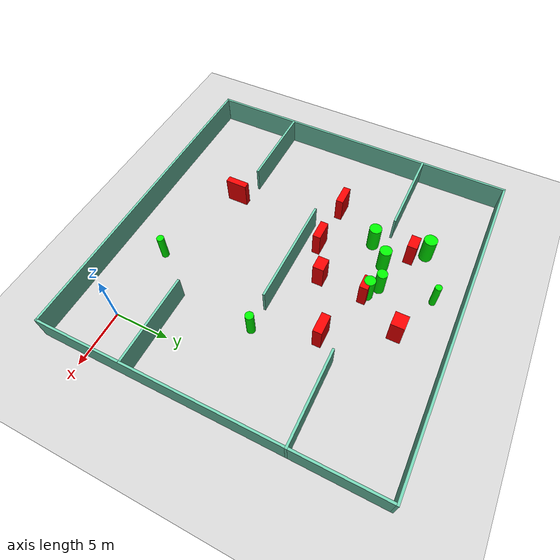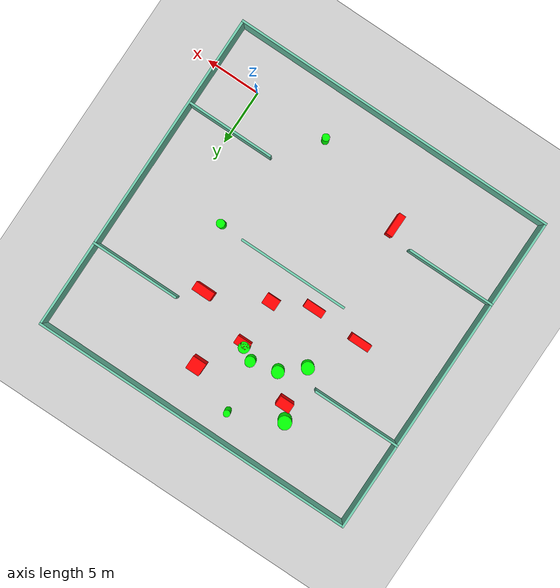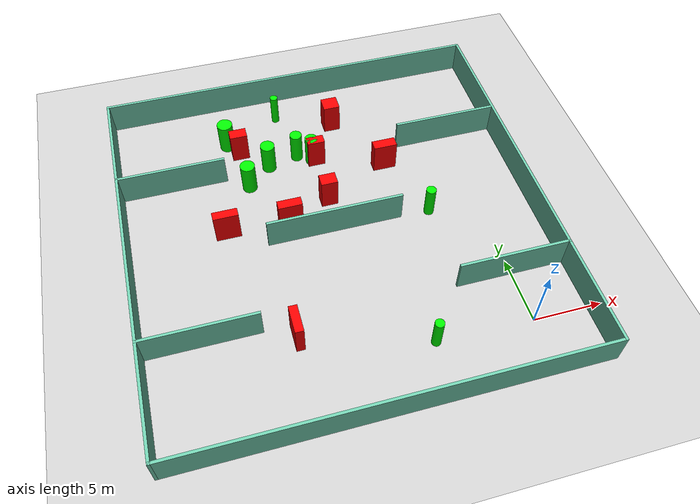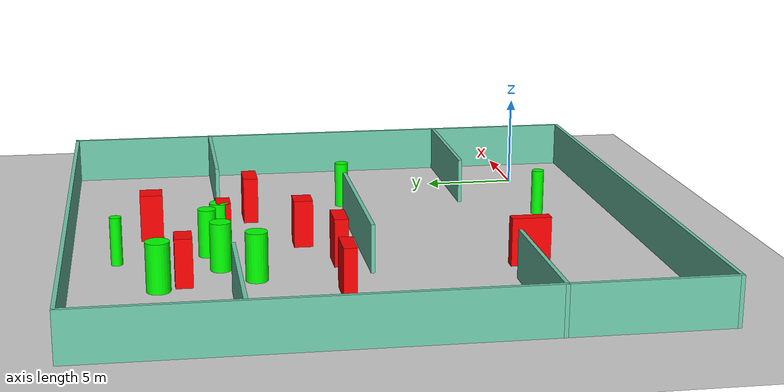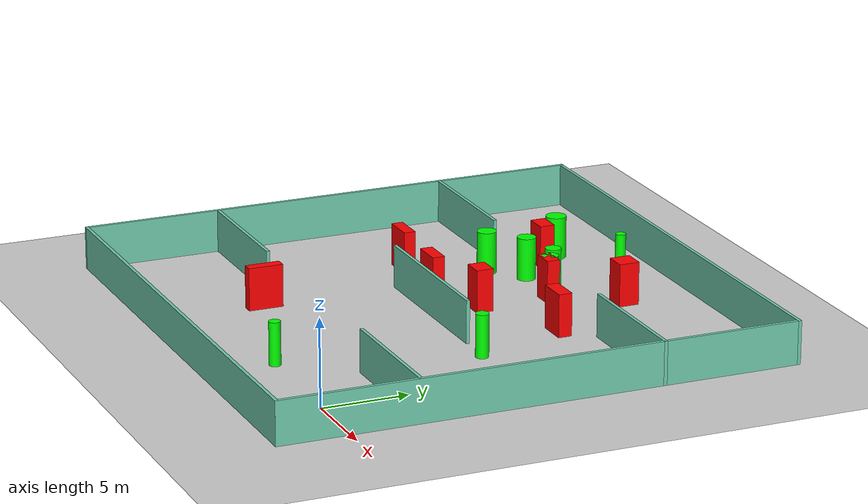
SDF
<sdf version="1.7">
 <world name="default">
  <light name="sun" type="directional">
   <pose>0 0 10 0 -0 0</pose>
   <diffuse>0.8 0.8 0.8 1</diffuse>
   <specular>0.2 0.2 0.2 1</specular>
   <attenuation>
    <range>1000</range>
    <constant>0.9</constant>
    <linear>0.01</linear>
    <quadratic>0.001</quadratic>
   </attenuation>
   <direction>-0.5 0.1 -0.9</direction>
   <spot><inner_angle>0</inner_angle><outer_angle>0</outer_angle><falloff>0</falloff></spot>
  </light>
  <model name="ground_plane">
   <static>1</static>
   <link name="link">
    <collision name="collision">
     <geometry><plane><normal>0 0 1</normal><size>100 100</size></plane></geometry>
     <surface>
      <contact><collide_bitmask>65535</collide_bitmask></contact>
      <friction><ode><mu>100</mu><mu2>50</mu2></ode></friction>
     </surface>
    </collision>
    <visual name="visual">
     <cast_shadows>0</cast_shadows>
     <geometry><plane><normal>0 0 1</normal><size>100 100</size></plane></geometry>
     <material>
      <script><uri>file://media/materials/scripts/gazebo.material</uri><name>Gazebo/Grey</name></script>
     </material>
    </visual>
   </link>
  </model>
  <gravity>0 0 -9.8</gravity>
  <magnetic_field>6e-06 2.3e-05 -4.2e-05</magnetic_field>
  <atmosphere type="adiabatic"/>
  <physics type="ode">
   <max_step_size>0.001</max_step_size>
   <real_time_factor>1</real_time_factor>
   <real_time_update_rate>1000</real_time_update_rate>
  </physics>
  <scene><ambient>0.4 0.4 0.4 1</ambient><background>0.7 0.7 0.7 1</background><shadows>1</shadows></scene>
  <spherical_coordinates>
   <surface_model>EARTH_WGS84</surface_model>
   <latitude_deg>0</latitude_deg>
   <longitude_deg>0</longitude_deg>
   <elevation>0</elevation>
   <heading_deg>0</heading_deg>
  </spherical_coordinates>
  <model name="my_base_walls">
   <link name="Wall_10">
    <collision name="Wall_10_Collision">
     <geometry><box><size>8.2 0.2 2.5</size></box></geometry>
     <pose>0 0 1.25 0 -0 0</pose>
    </collision>
    <visual name="Wall_10_Visual">
     <pose>0 0 1.25 0 -0 0</pose>
     <geometry><box><size>8.2 0.2 2.5</size></box></geometry>
     <material>
      <script><uri>file://media/materials/scripts/gazebo.material</uri><name>Gazebo/Grey</name></script>
      <ambient>0.435294 0.796078 0.67451 1</ambient>
     </material>
     <meta><layer>0</layer></meta>
    </visual>
    <pose>-11 -7 0 0 -0 0</pose>
   </link>
   <link name="Wall_12">
    <collision name="Wall_12_Collision">
     <geometry><box><size>8.2 0.2 2.5</size></box></geometry>
     <pose>0 0 1.25 0 -0 0</pose>
    </collision>
    <visual name="Wall_12_Visual">
     <pose>0 0 1.25 0 -0 0</pose>
     <geometry><box><size>8.2 0.2 2.5</size></box></geometry>
     <material>
      <script><uri>file://media/materials/scripts/gazebo.material</uri><name>Gazebo/Grey</name></script>
      <ambient>0.435294 0.796078 0.67451 1</ambient>
     </material>
     <meta><layer>0</layer></meta>
    </visual>
    <pose>-11 7 0 0 -0 0</pose>
   </link>
   <link name="Wall_14">
    <collision name="Wall_14_Collision">
     <geometry><box><size>8.2 0.2 2.5</size></box></geometry>
     <pose>0 0 1.25 0 -0 0</pose>
    </collision>
    <visual name="Wall_14_Visual">
     <pose>0 0 1.25 0 -0 0</pose>
     <geometry><box><size>8.2 0.2 2.5</size></box></geometry>
     <material>
      <script><uri>file://media/materials/scripts/gazebo.material</uri><name>Gazebo/Grey</name></script>
      <ambient>0.435294 0.796078 0.67451 1</ambient>
     </material>
     <meta><layer>0</layer></meta>
    </visual>
    <pose>11 7 0 0 -0 3.14159</pose>
   </link>
   <link name="Wall_16">
    <collision name="Wall_16_Collision">
     <geometry><box><size>10.2 0.2 2.5</size></box></geometry>
     <pose>0 0 1.25 0 -0 0</pose>
    </collision>
    <visual name="Wall_16_Visual">
     <pose>0 0 1.25 0 -0 0</pose>
     <geometry><box><size>10.2 0.2 2.5</size></box></geometry>
     <material>
      <script><uri>file://media/materials/scripts/gazebo.material</uri><name>Gazebo/Grey</name></script>
      <ambient>0.435294 0.796078 0.67451 1</ambient>
     </material>
     <meta><layer>0</layer></meta>
    </visual>
    <pose>0 0 0 0 -0 3.14159</pose>
   </link>
   <link name="Wall_2">
    <collision name="Wall_2_Collision">
     <geometry><box><size>30.2 0.2 2.5</size></box></geometry>
     <pose>0 0 1.25 0 -0 0</pose>
    </collision>
    <visual name="Wall_2_Visual">
     <pose>0 0 1.25 0 -0 0</pose>
     <geometry><box><size>30.2 0.2 2.5</size></box></geometry>
     <material>
      <script><uri>file://media/materials/scripts/gazebo.material</uri><name>Gazebo/Grey</name></script>
      <ambient>0.435294 0.796078 0.67451 1</ambient>
     </material>
     <meta><layer>0</layer></meta>
    </visual>
    <pose>0 -15 0 0 -0 3.14159</pose>
   </link>
   <link name="Wall_3">
    <collision name="Wall_3_Collision">
     <geometry><box><size>30.2 0.2 2.5</size></box></geometry>
     <pose>0 0 1.25 0 -0 0</pose>
    </collision>
    <visual name="Wall_3_Visual">
     <pose>0 0 1.25 0 -0 0</pose>
     <geometry><box><size>30.2 0.2 2.5</size></box></geometry>
     <material>
      <script><uri>file://media/materials/scripts/gazebo.material</uri><name>Gazebo/Grey</name></script>
      <ambient>0.435294 0.796078 0.67451 1</ambient>
     </material>
     <meta><layer>0</layer></meta>
    </visual>
    <pose>-15 0 0 0 -0 1.5708</pose>
   </link>
   <link name="Wall_4">
    <collision name="Wall_4_Collision">
     <geometry><box><size>30.2 0.2 2.5</size></box></geometry>
     <pose>0 0 1.25 0 -0 0</pose>
    </collision>
    <visual name="Wall_4_Visual">
     <pose>0 0 1.25 0 -0 0</pose>
     <geometry><box><size>30.2 0.2 2.5</size></box></geometry>
     <material>
      <script><uri>file://media/materials/scripts/gazebo.material</uri><name>Gazebo/Grey</name></script>
      <ambient>0.435294 0.796078 0.67451 1</ambient>
     </material>
     <meta><layer>0</layer></meta>
    </visual>
    <pose>0 15 0 0 -0 0</pose>
   </link>
   <link name="Wall_6">
    <collision name="Wall_6_Collision">
     <geometry><box><size>30.2 0.2 2.5</size></box></geometry>
     <pose>0 0 1.25 0 -0 0</pose>
    </collision>
    <visual name="Wall_6_Visual">
     <pose>0 0 1.25 0 -0 0</pose>
     <geometry><box><size>30.2 0.2 2.5</size></box></geometry>
     <material>
      <script><uri>file://media/materials/scripts/gazebo.material</uri><name>Gazebo/Grey</name></script>
      <ambient>0.435294 0.796078 0.67451 1</ambient>
     </material>
     <meta><layer>0</layer></meta>
    </visual>
    <pose>15 0 0 0 -0 1.5708</pose>
   </link>
   <link name="Wall_8">
    <collision name="Wall_8_Collision">
     <geometry><box><size>8.2 0.2 2.5</size></box></geometry>
     <pose>0 0 1.25 0 -0 0</pose>
    </collision>
    <visual name="Wall_8_Visual">
     <pose>0 0 1.25 0 -0 0</pose>
     <geometry><box><size>8.2 0.2 2.5</size></box></geometry>
     <material>
      <script><uri>file://media/materials/scripts/gazebo.material</uri><name>Gazebo/Grey</name></script>
      <ambient>0.435294 0.796078 0.67451 1</ambient>
     </material>
     <meta><layer>0</layer></meta>
    </visual>
    <pose>11 -7 0 0 -0 3.14159</pose>
   </link>
   <static>1</static>
   <pose>-11 11 0 0 -0 0</pose>
  </model>
  <model name="cylinder1">
   <static>1</static>
   <link name="link">
    <inertial>
     <mass>1</mass>
     <inertia><ixx>0.5</ixx><ixy>0</ixy><ixz>0</ixz><iyy>0.5</iyy><iyz>0</iyz><izz>1</izz></inertia>
    </inertial>
    <collision name="collision">
     <geometry><cylinder><radius>0.4961784479825633</radius><length>2.5</length></cylinder></geometry>
    </collision>
    <visual name="visual">
     <geometry><cylinder><radius>0.4961784479825633</radius><length>2.5</length></cylinder></geometry>
     <material>
      <ambient>0 1 0 1</ambient>
      <diffuse>0 1 0 1</diffuse>
      <specular>0.1 0.1 0.1 1</specular>
      <emissive>0 0 0 0</emissive>
     </material>
    </visual>
   </link>
   <pose>-11.016577520635343 18.29451765195061 1.25 0 0 0</pose>
  </model>
  <model name="cylinder2">
   <static>1</static>
   <link name="link">
    <inertial>
     <mass>1</mass>
     <inertia><ixx>0.5</ixx><ixy>0</ixy><ixz>0</ixz><iyy>0.5</iyy><iyz>0</iyz><izz>1</izz></inertia>
    </inertial>
    <collision name="collision">
     <geometry><cylinder><radius>0.4643174666856728</radius><length>2.5</length></cylinder></geometry>
    </collision>
    <visual name="visual">
     <geometry><cylinder><radius>0.4643174666856728</radius><length>2.5</length></cylinder></geometry>
     <material>
      <ambient>0 1 0 1</ambient>
      <diffuse>0 1 0 1</diffuse>
      <specular>0.1 0.1 0.1 1</specular>
      <emissive>0 0 0 0</emissive>
     </material>
    </visual>
   </link>
   <pose>-12.090264458234493 18.9792389616934 1.25 0 0 0</pose>
  </model>
  <model name="cylinder3">
   <static>1</static>
   <link name="link">
    <inertial>
     <mass>1</mass>
     <inertia><ixx>0.5</ixx><ixy>0</ixy><ixz>0</ixz><iyy>0.5</iyy><iyz>0</iyz><izz>1</izz></inertia>
    </inertial>
    <collision name="collision">
     <geometry><cylinder><radius>0.3317122093057355</radius><length>2.5</length></cylinder></geometry>
    </collision>
    <visual name="visual">
     <geometry><cylinder><radius>0.3317122093057355</radius><length>2.5</length></cylinder></geometry>
     <material>
      <ambient>0 1 0 1</ambient>
      <diffuse>0 1 0 1</diffuse>
      <specular>0.1 0.1 0.1 1</specular>
      <emissive>0 0 0 0</emissive>
     </material>
    </visual>
   </link>
   <pose>-6.994867282225151 0.1661384969049231 1.25 0 0 0</pose>
  </model>
  <model name="cylinder4">
   <static>1</static>
   <link name="link">
    <inertial>
     <mass>1</mass>
     <inertia><ixx>0.5</ixx><ixy>0</ixy><ixz>0</ixz><iyy>0.5</iyy><iyz>0</iyz><izz>1</izz></inertia>
    </inertial>
    <collision name="collision">
     <geometry><cylinder><radius>0.5610772902713917</radius><length>2.5</length></cylinder></geometry>
    </collision>
    <visual name="visual">
     <geometry><cylinder><radius>0.5610772902713917</radius><length>2.5</length></cylinder></geometry>
     <material>
      <ambient>0 1 0 1</ambient>
      <diffuse>0 1 0 1</diffuse>
      <specular>0.1 0.1 0.1 1</specular>
      <emissive>0 0 0 0</emissive>
     </material>
    </visual>
   </link>
   <pose>-16.347771734513266 16.78089442032516 1.25 0 0 0</pose>
  </model>
  <model name="cylinder5">
   <static>1</static>
   <link name="link">
    <inertial>
     <mass>1</mass>
     <inertia><ixx>0.5</ixx><ixy>0</ixy><ixz>0</ixz><iyy>0.5</iyy><iyz>0</iyz><izz>1</izz></inertia>
    </inertial>
    <collision name="collision">
     <geometry><cylinder><radius>0.3001285069188483</radius><length>2.5</length></cylinder></geometry>
    </collision>
    <visual name="visual">
     <geometry><cylinder><radius>0.3001285069188483</radius><length>2.5</length></cylinder></geometry>
     <material>
      <ambient>0 1 0 1</ambient>
      <diffuse>0 1 0 1</diffuse>
      <specular>0.1 0.1 0.1 1</specular>
      <emissive>0 0 0 0</emissive>
     </material>
    </visual>
   </link>
   <pose>-12.862080097990201 23.591913370779476 1.25 0 0 0</pose>
  </model>
  <model name="cylinder6">
   <static>1</static>
   <link name="link">
    <inertial>
     <mass>1</mass>
     <inertia><ixx>0.5</ixx><ixy>0</ixy><ixz>0</ixz><iyy>0.5</iyy><iyz>0</iyz><izz>1</izz></inertia>
    </inertial>
    <collision name="collision">
     <geometry><cylinder><radius>0.37444736580950766</radius><length>2.5</length></cylinder></geometry>
    </collision>
    <visual name="visual">
     <geometry><cylinder><radius>0.37444736580950766</radius><length>2.5</length></cylinder></geometry>
     <material>
      <ambient>0 1 0 1</ambient>
      <diffuse>0 1 0 1</diffuse>
      <specular>0.1 0.1 0.1 1</specular>
      <emissive>0 0 0 0</emissive>
     </material>
    </visual>
   </link>
   <pose>-3.734685221306197 10.87764277479152 1.25 0 0 0</pose>
  </model>
  <model name="cylinder7">
   <static>1</static>
   <link name="link">
    <inertial>
     <mass>1</mass>
     <inertia><ixx>0.5</ixx><ixy>0</ixy><ixz>0</ixz><iyy>0.5</iyy><iyz>0</iyz><izz>1</izz></inertia>
    </inertial>
    <collision name="collision">
     <geometry><cylinder><radius>0.6006714257447754</radius><length>2.5</length></cylinder></geometry>
    </collision>
    <visual name="visual">
     <geometry><cylinder><radius>0.6006714257447754</radius><length>2.5</length></cylinder></geometry>
     <material>
      <ambient>0 1 0 1</ambient>
      <diffuse>0 1 0 1</diffuse>
      <specular>0.1 0.1 0.1 1</specular>
      <emissive>0 0 0 0</emissive>
     </material>
    </visual>
   </link>
   <pose>-17.261646299355995 21.57488402302464 1.25 0 0 0</pose>
  </model>
  <model name="cylinder8">
   <static>1</static>
   <link name="link">
    <inertial>
     <mass>1</mass>
     <inertia><ixx>0.5</ixx><ixy>0</ixy><ixz>0</ixz><iyy>0.5</iyy><iyz>0</iyz><izz>1</izz></inertia>
    </inertial>
    <collision name="collision">
     <geometry><cylinder><radius>0.5468839589653157</radius><length>2.5</length></cylinder></geometry>
    </collision>
    <visual name="visual">
     <geometry><cylinder><radius>0.5468839589653157</radius><length>2.5</length></cylinder></geometry>
     <material>
      <ambient>0 1 0 1</ambient>
      <diffuse>0 1 0 1</diffuse>
      <specular>0.1 0.1 0.1 1</specular>
      <emissive>0 0 0 0</emissive>
     </material>
    </visual>
   </link>
   <pose>-14.469330675439629 18.42422971649962 1.25 0 0 0</pose>
  </model>
  <model name="box1">
   <static>1</static>
   <link name="link">
    <inertial>
     <mass>1</mass>
     <inertia><ixx>0.083</ixx><ixy>0</ixy><ixz>0</ixz><iyy>0.083</iyy><iyz>0</iyz><izz>0.083</izz></inertia>
    </inertial>
    <collision name="collision">
     <geometry><box><size>1.7930455769097344 0.7221142390042903 2.5</size></box></geometry>
    </collision>
    <visual name="visual">
     <geometry><box><size>1.7930455769097344 0.7221142390042903 2.5</size></box></geometry>
     <material>
      <ambient>1 0 0 1</ambient>
      <diffuse>1 0 0 1</diffuse>
      <specular>0.1 0.1 0.1 1</specular>
      <emissive>0 0 0 0</emissive>
     </material>
    </visual>
    <sensor name="my_contact" type="contact">
     <contact><collision>box_collision</collision><topic>__default_topic__</topic></contact>
    </sensor>
   </link>
   <pose>-14.07016576424841 12.411184515924889 1.25 0 0 0</pose>
  </model>
  <model name="box2">
   <static>1</static>
   <link name="link">
    <inertial>
     <mass>1</mass>
     <inertia><ixx>0.083</ixx><ixy>0</ixy><ixz>0</ixz><iyy>0.083</iyy><iyz>0</iyz><izz>0.083</izz></inertia>
    </inertial>
    <collision name="collision">
     <geometry><box><size>1.2504771575380618 0.992946767063936 2.5</size></box></geometry>
    </collision>
    <visual name="visual">
     <geometry><box><size>1.2504771575380618 0.992946767063936 2.5</size></box></geometry>
     <material>
      <ambient>1 0 0 1</ambient>
      <diffuse>1 0 0 1</diffuse>
      <specular>0.1 0.1 0.1 1</specular>
      <emissive>0 0 0 0</emissive>
     </material>
    </visual>
    <sensor name="my_contact" type="contact">
     <contact><collision>box_collision</collision><topic>__default_topic__</topic></contact>
    </sensor>
   </link>
   <pose>-10.787131941651042 13.926070373398318 1.25 0 0 0</pose>
  </model>
  <model name="box3">
   <static>1</static>
   <link name="link">
    <inertial>
     <mass>1</mass>
     <inertia><ixx>0.083</ixx><ixy>0</ixy><ixz>0</ixz><iyy>0.083</iyy><iyz>0</iyz><izz>0.083</izz></inertia>
    </inertial>
    <collision name="collision">
     <geometry><box><size>1.33146743606355 0.8748895554652643 2.5</size></box></geometry>
    </collision>
    <visual name="visual">
     <geometry><box><size>1.33146743606355 0.8748895554652643 2.5</size></box></geometry>
     <material>
      <ambient>1 0 0 1</ambient>
      <diffuse>1 0 0 1</diffuse>
      <specular>0.1 0.1 0.1 1</specular>
      <emissive>0 0 0 0</emissive>
     </material>
    </visual>
    <sensor name="my_contact" type="contact">
     <contact><collision>box_collision</collision><topic>__default_topic__</topic></contact>
    </sensor>
   </link>
   <pose>-16.434576478542702 20.338301990829862 1.25 0 0 0</pose>
  </model>
  <model name="box4">
   <static>1</static>
   <link name="link">
    <inertial>
     <mass>1</mass>
     <inertia><ixx>0.083</ixx><ixy>0</ixy><ixz>0</ixz><iyy>0.083</iyy><iyz>0</iyz><izz>0.083</izz></inertia>
    </inertial>
    <collision name="collision">
     <geometry><box><size>1.8639049880962932 0.674576698606131 2.5</size></box></geometry>
    </collision>
    <visual name="visual">
     <geometry><box><size>1.8639049880962932 0.674576698606131 2.5</size></box></geometry>
     <material>
      <ambient>1 0 0 1</ambient>
      <diffuse>1 0 0 1</diffuse>
      <specular>0.1 0.1 0.1 1</specular>
      <emissive>0 0 0 0</emissive>
     </material>
    </visual>
    <sensor name="my_contact" type="contact">
     <contact><collision>box_collision</collision><topic>__default_topic__</topic></contact>
    </sensor>
   </link>
   <pose>-18.767619670419606 12.630824002783045 1.25 0 0 0</pose>
  </model>
  <model name="box5">
   <static>1</static>
   <link name="link">
    <inertial>
     <mass>1</mass>
     <inertia><ixx>0.083</ixx><ixy>0</ixy><ixz>0</ixz><iyy>0.083</iyy><iyz>0</iyz><izz>0.083</izz></inertia>
    </inertial>
    <collision name="collision">
     <geometry><box><size>1.3319898755752533 0.7488263479951888 2.5</size></box></geometry>
    </collision>
    <visual name="visual">
     <geometry><box><size>1.3319898755752533 0.7488263479951888 2.5</size></box></geometry>
     <material>
      <ambient>1 0 0 1</ambient>
      <diffuse>1 0 0 1</diffuse>
      <specular>0.1 0.1 0.1 1</specular>
      <emissive>0 0 0 0</emissive>
     </material>
    </visual>
    <sensor name="my_contact" type="contact">
     <contact><collision>box_collision</collision><topic>__default_topic__</topic></contact>
    </sensor>
   </link>
   <pose>-10.735727667104037 18.072394860571503 1.25 0 0 0</pose>
  </model>
  <model name="box6">
   <static>1</static>
   <link name="link">
    <inertial>
     <mass>1</mass>
     <inertia><ixx>0.083</ixx><ixy>0</ixy><ixz>0</ixz><iyy>0.083</iyy><iyz>0</iyz><izz>0.083</izz></inertia>
    </inertial>
    <collision name="collision">
     <geometry><box><size>0.6097764771967131 2.023420869348005 2.5</size></box></geometry>
    </collision>
    <visual name="visual">
     <geometry><box><size>0.6097764771967131 2.023420869348005 2.5</size></box></geometry>
     <material>
      <ambient>1 0 0 1</ambient>
      <diffuse>1 0 0 1</diffuse>
      <specular>0.1 0.1 0.1 1</specular>
      <emissive>0 0 0 0</emissive>
     </material>
    </visual>
    <sensor name="my_contact" type="contact">
     <contact><collision>box_collision</collision><topic>__default_topic__</topic></contact>
    </sensor>
   </link>
   <pose>-15.809327206935588 2.9362022982387845 1.25 0 0 0</pose>
  </model>
  <model name="box7">
   <static>1</static>
   <link name="link">
    <inertial>
     <mass>1</mass>
     <inertia><ixx>0.083</ixx><ixy>0</ixy><ixz>0</ixz><iyy>0.083</iyy><iyz>0</iyz><izz>0.083</izz></inertia>
    </inertial>
    <collision name="collision">
     <geometry><box><size>1.27912773667946 1.1879367970155899 2.5</size></box></geometry>
    </collision>
    <visual name="visual">
     <geometry><box><size>1.27912773667946 1.1879367970155899 2.5</size></box></geometry>
     <material>
      <ambient>1 0 0 1</ambient>
      <diffuse>1 0 0 1</diffuse>
      <specular>0.1 0.1 0.1 1</specular>
      <emissive>0 0 0 0</emissive>
     </material>
    </visual>
    <sensor name="my_contact" type="contact">
     <contact><collision>box_collision</collision><topic>__default_topic__</topic></contact>
    </sensor>
   </link>
   <pose>-8.585635698011185 21.75505201676884 1.25 0 0 0</pose>
  </model>
  <model name="box8">
   <static>1</static>
   <link name="link">
    <inertial>
     <mass>1</mass>
     <inertia><ixx>0.083</ixx><ixy>0</ixy><ixz>0</ixz><iyy>0.083</iyy><iyz>0</iyz><izz>0.083</izz></inertia>
    </inertial>
    <collision name="collision">
     <geometry><box><size>1.7945759956809717 0.7878487117490939 2.5</size></box></geometry>
    </collision>
    <visual name="visual">
     <geometry><box><size>1.7945759956809717 0.7878487117490939 2.5</size></box></geometry>
     <material>
      <ambient>1 0 0 1</ambient>
      <diffuse>1 0 0 1</diffuse>
      <specular>0.1 0.1 0.1 1</specular>
      <emissive>0 0 0 0</emissive>
     </material>
    </visual>
    <sensor name="my_contact" type="contact">
     <contact><collision>box_collision</collision><topic>__default_topic__</topic></contact>
    </sensor>
   </link>
   <pose>-5.655066842470394 16.30913144573542 1.25 0 0 0</pose>
  </model>
 </world>
</sdf>
